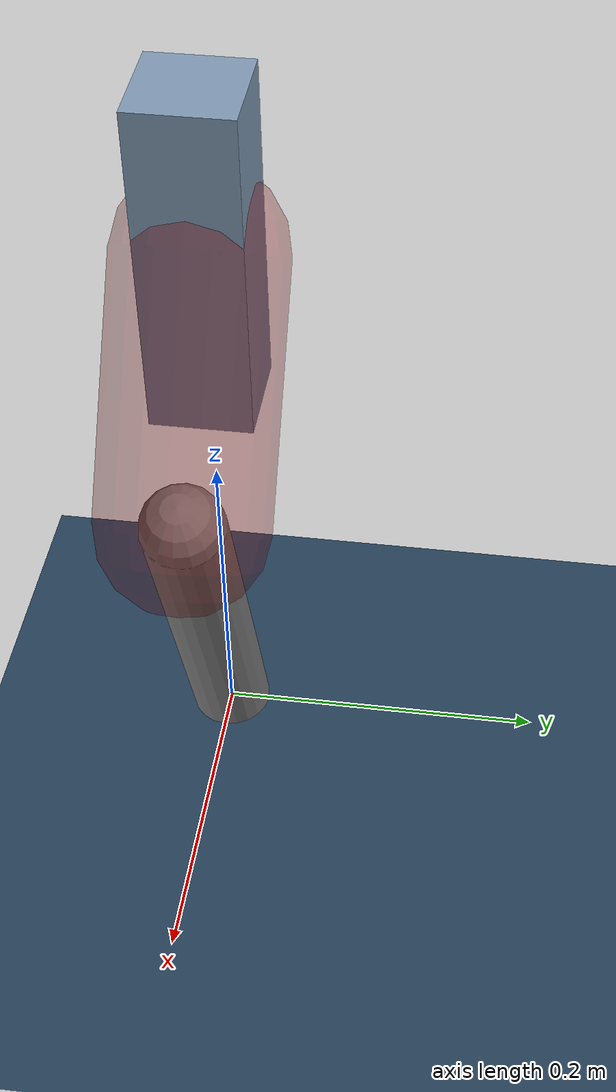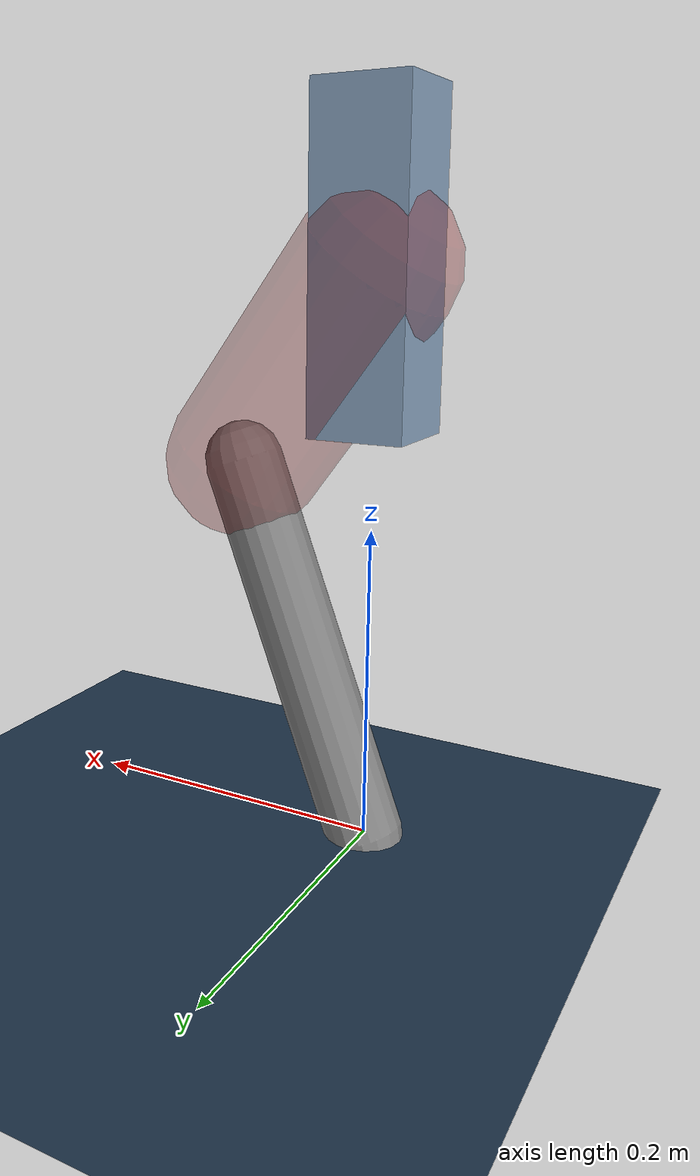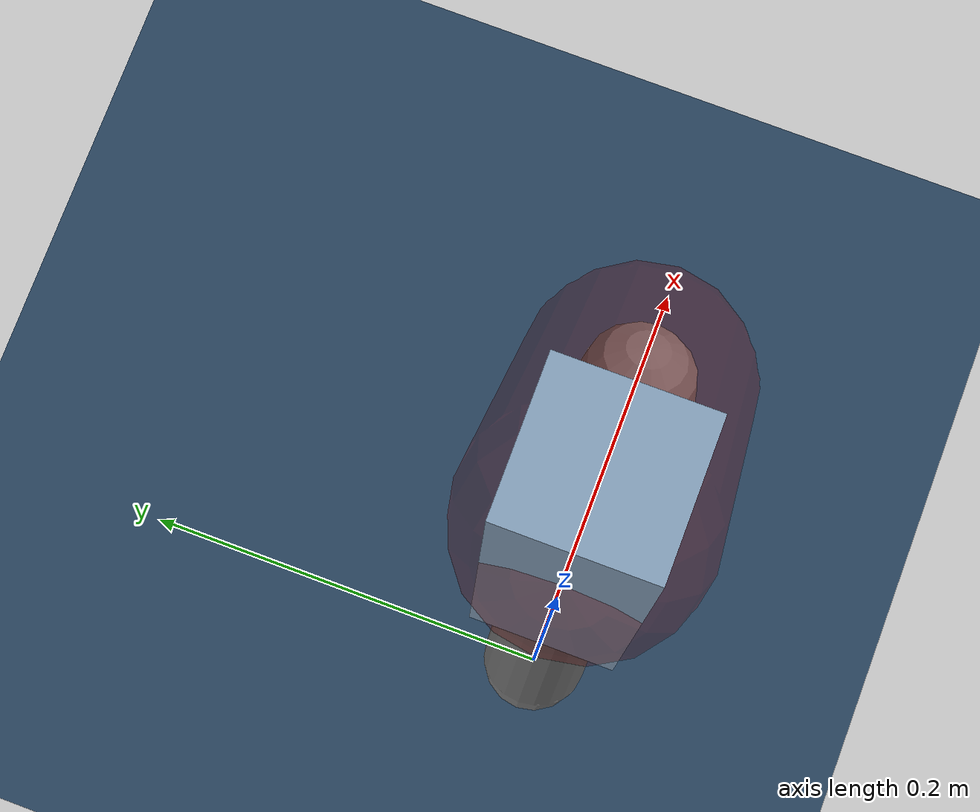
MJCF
<mujoco model="Hopper2D">
	<compiler inertiafromgeom="true" angle="radian" />
	<option timestep="0.001" integrator="implicit" cone="elliptic" solver="Newton" tolerance="1e-10" />

	<default>
		<geom contype="1" conaffinity="1" condim="3" friction="2 0.005 0.0001" solref="0.005 1" />
		<joint limited="true" damping="0.1" />
	</default>

	<asset>
		<texture name="skybox" type="skybox" builtin="gradient" rgb1=".4 .6 .8" rgb2="0 0 0" width="800" height="800" />
		<texture name="grid" type="2d" builtin="checker" rgb1=".1 .2 .3" rgb2=".2 .3 .4" width="300" height="300" mark="edge" markrgb=".2 .3 .4" />
		<material name="ground" texture="grid" texrepeat="1 1" texuniform="true" reflectance="0.1" />
		<material name="leg" rgba="0.5 0.6 0.7 1" />
	</asset>

	<worldbody>

		<geom name="floor" type="plane" size="5 5 0.25" material="ground" />

		<light directional="false" diffuse="0.8 0.8 0.8" specular="0.3 0.3 0.3" pos="0 0 2" dir="0 0 -1" />
		<light mode="targetbodycom" target="base" directional="false" diffuse="0.8 0.8 0.8" specular="0.3 0.3 0.3" pos="0 0 2" dir="0 0 -1" />

		<camera name="fixed" pos="0 -2 1" xyaxes="1 0 0 0 0 1" />
		<camera name="tracking" mode="trackcom" pos="0 -3 1" />

		<body name="root" pos="0 0 0.3587479261419815">
			<joint name="slide_x" type="slide" axis="1 0 0" range="-100 100" />
			<joint name="slide_z" type="slide" axis="0 0 1" range="0 10" />

			<body name="base" pos="0 0 0">
				<geom name="torso" type="box" size="0.03 0.03 0.1" mass="1.412" material="leg" />

				<body name="link1" pos="0 0 0" euler="0 0.9374631613999093 0">
					<joint type="hinge" axis="0 -1 0" pos="0 0 0" name="hinge1" limited="true" range="-3.14 3.14" stiffness="0" damping="0.1" />
					<geom name="thigh" type="capsule" fromto="0 0 0 0.15097629811535043 0 0" size="0.05" rgba="0.5 0 0 0.3" mass="0.610843115476841" />

					<body name="link2" pos="0.15097629811535043 0 0" euler="0 0.9937984490162562 0">
						<joint type="hinge" axis="0 -1 0" pos="0 0 0" name="hinge2" limited="true" range="-3.14 3.14" stiffness="0" damping="0.1" />
						<geom name="shank" type="capsule" fromto="0 0 0 0.25333307992100723 0 0" size="0.025" mass="0.4452664639368058" />

					</body>
				</body>
			</body>
		</body>
	</worldbody>

	<actuator>
		<motor name="torque1" joint="hinge1" ctrlrange="-60.58800983527236 60.58800983527236" ctrllimited="true" gear="1" />
		<motor name="torque2" joint="hinge2" ctrlrange="-12.24337031224712 12.24337031224712" ctrllimited="true" gear="1" />
	</actuator>
</mujoco>
